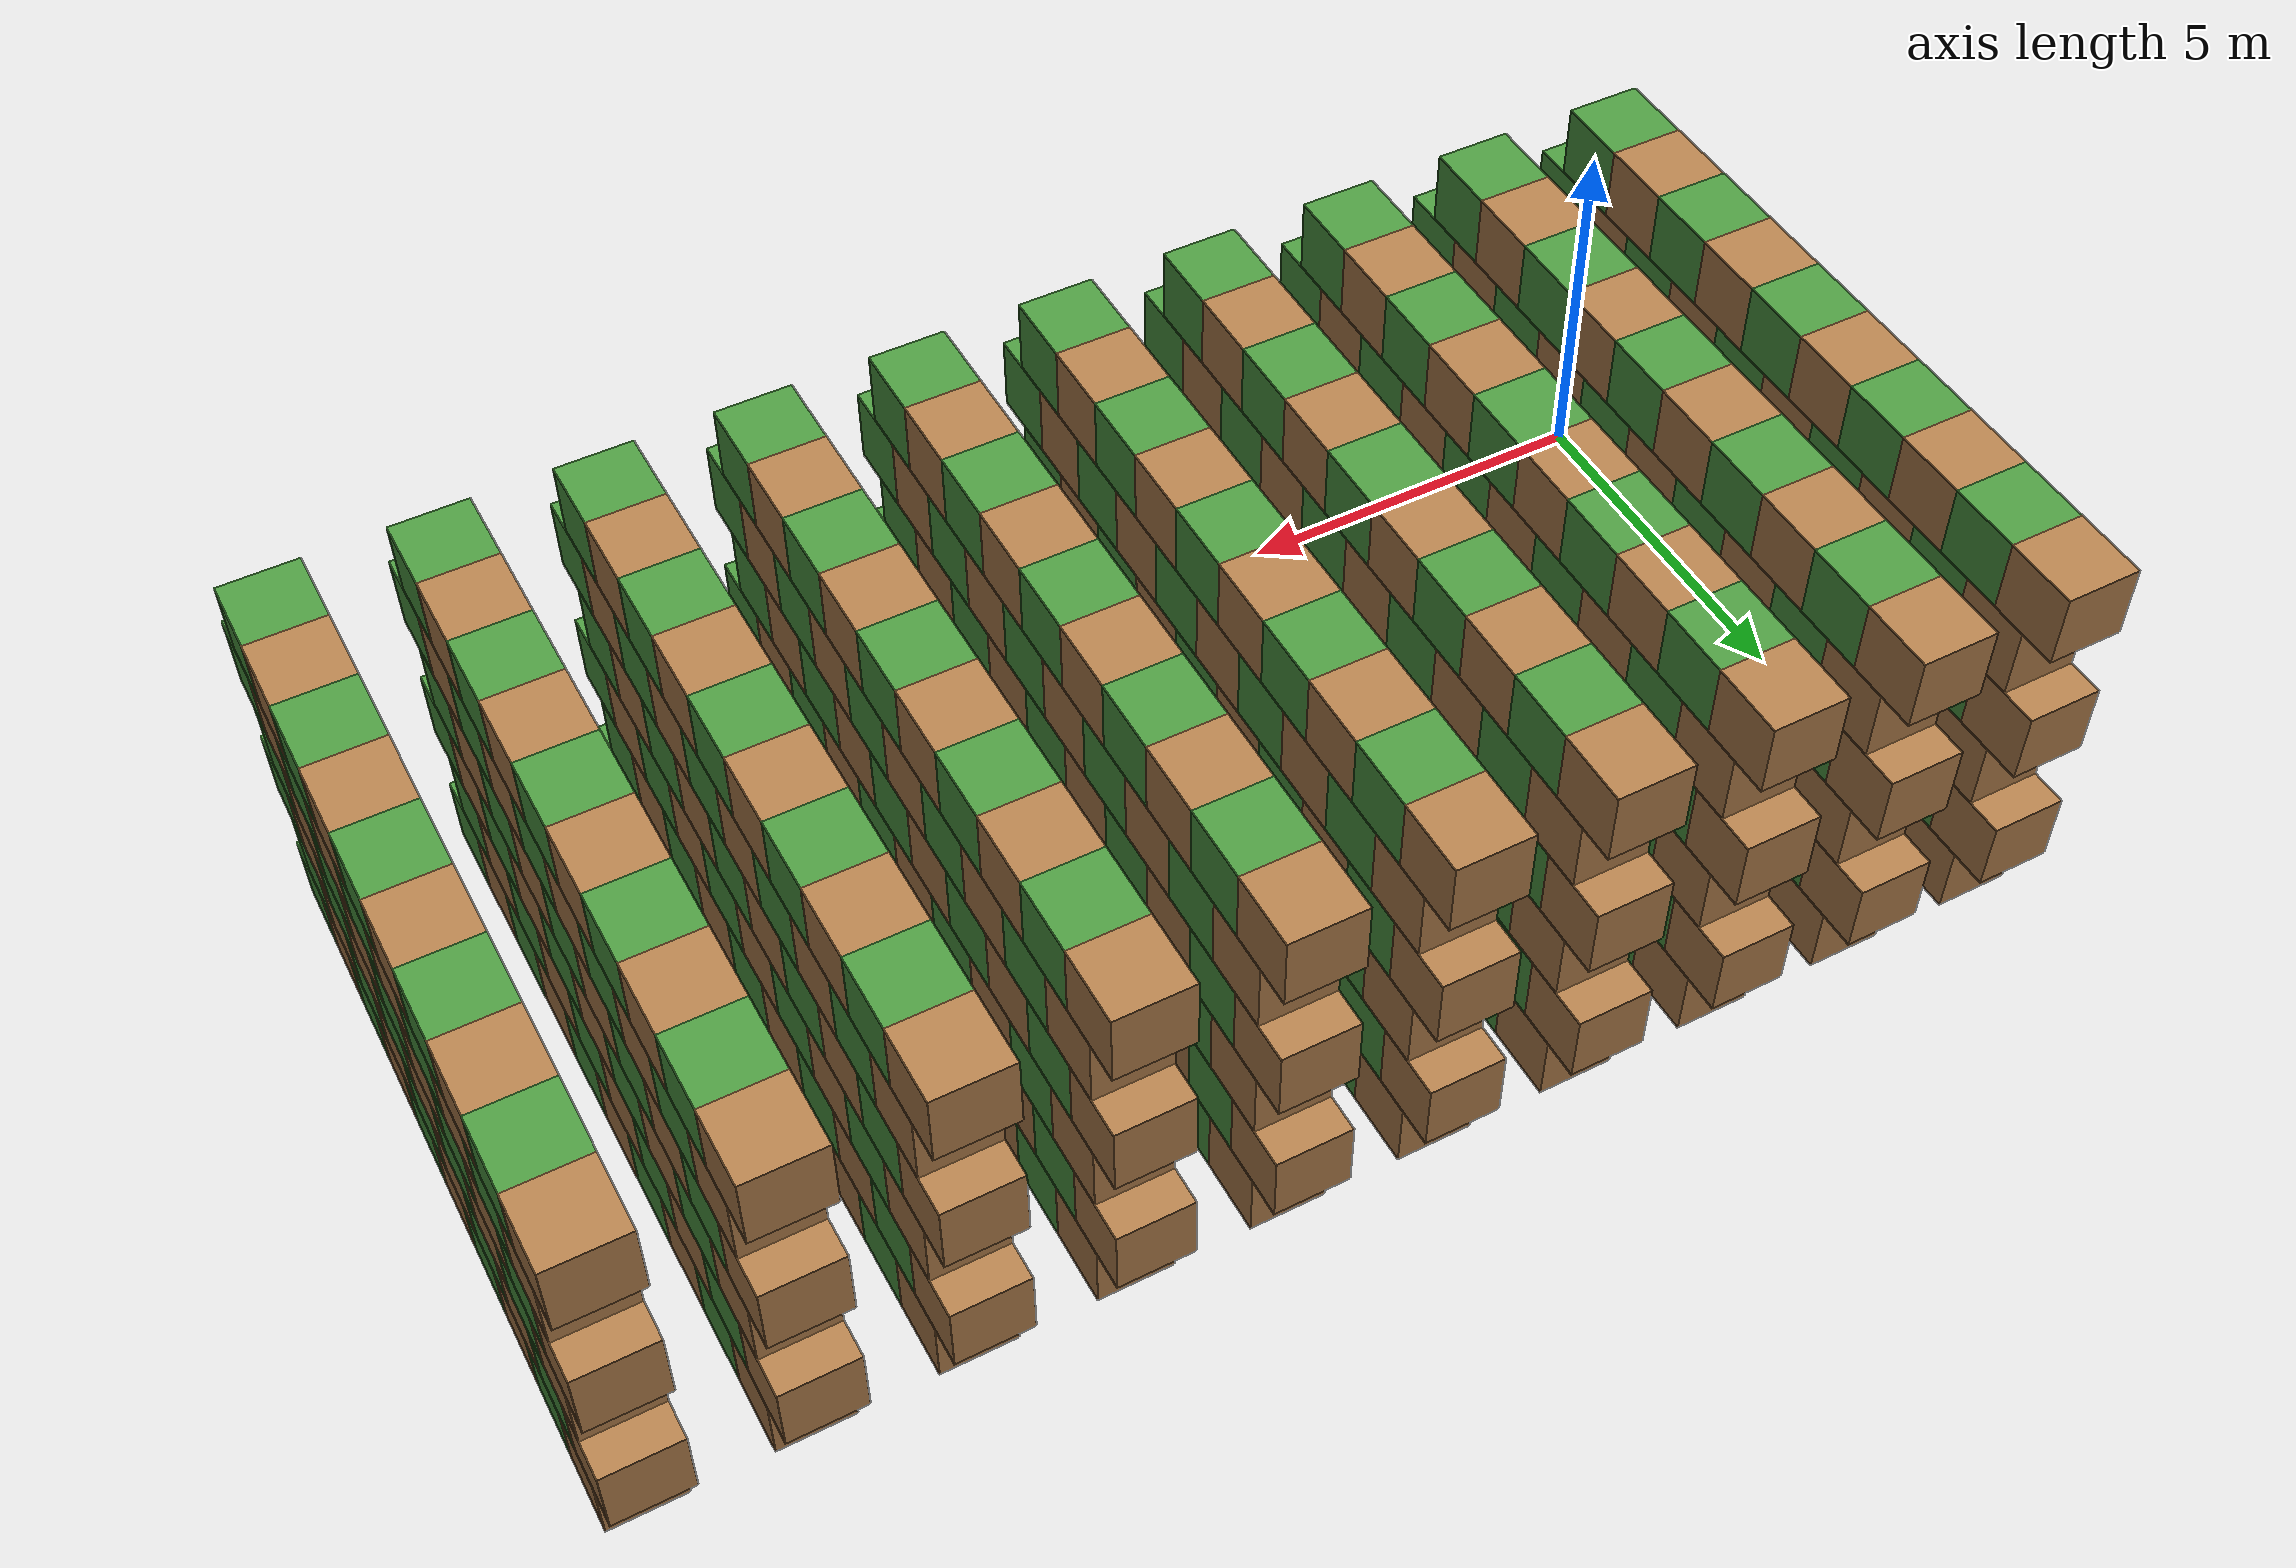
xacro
<?xml version="1.0"?>
<robot name="box_stack_block"
       xmlns:xi="http://www.w3.org/2001/XInclude"
       xmlns:gazebo="http://playerstage.sourceforge.net/gazebo/xmlschema/#gz"
       xmlns:model="http://playerstage.sourceforge.net/gazebo/xmlschema/#model"
       xmlns:sensor="http://playerstage.sourceforge.net/gazebo/xmlschema/#sensor"
       xmlns:body="http://playerstage.sourceforge.net/gazebo/xmlschema/#body"
       xmlns:geom="http://playerstage.sourceforge.net/gazebo/xmlschema/#geom"
       xmlns:joint="http://playerstage.sourceforge.net/gazebo/xmlschema/#joint"
       xmlns:interface="http://playerstage.sourceforge.net/gazebo/xmlschema/#interface"
       xmlns:rendering="http://playerstage.sourceforge.net/gazebo/xmlschema/#rendering"
       xmlns:renderable="http://playerstage.sourceforge.net/gazebo/xmlschema/#renderable"
       xmlns:controller="http://playerstage.sourceforge.net/gazebo/xmlschema/#controller"
       xmlns:xacro="http://ros.org/wiki/xacro"
       xmlns:physics="http://playerstage.sourceforge.net/gazebo/xmlschema/#physics">

  <xacro:property name="moi" value="0.01"/>
  <xacro:property name="mass" value="1.0"/>
  <xacro:property name="kp" value="100000000000.0"/> <!-- erp of ~1e-2 -->
  <xacro:property name="kd" value="1000000000.0"/> <!-- cfm of ~1e-10 -->

  <link name="world"/>
  <xacro:macro name="one_link" params="link_name parent *origin material">
    <joint name="${link_name}_joint" type="floating" >
      <insert_block name="origin"/>
      <parent link="${parent}" />
      <child link="${link_name}" />
      <dynamics damping="0.0" />
    </joint>
    <link name="${link_name}">
      <inertial >
        <mass value="${mass}" />
        <origin xyz="0 0 0" />
        <inertia  ixx="${moi}" ixy="0.0"  ixz="0.0"  iyy="${moi}"  iyz="0.0"  izz="${moi}" />
      </inertial>
      <visual >
        <origin xyz="0 0 0.5" rpy="0 0 0" />
        <geometry>
          <box size="1 1 1" />
        </geometry>
      </visual>
      <collision >
        <origin xyz="0 0 0.5" rpy="0 0 0" />
        <geometry>
          <box size="1 1 1" />
        </geometry>
      </collision>
    </link>
    <gazebo reference="${link_name}">
      <kp>${kp}</kp>
      <kd>${kd}</kd>
      <material>${material}</material>
      <turnGravityOff>false</turnGravityOff>
      <selfCollide>true</selfCollide>
    </gazebo>
  </xacro:macro>

  <xacro:macro name ="interlaced_wall" params="offset">
    <xacro:one_link link_name="${offset}_link00" parent="world" material="Gazebo/GrassFloor"> <origin xyz="${offset} 0 0" rpy="0 0 0"/> </xacro:one_link>
    <xacro:one_link link_name="${offset}_link01" parent="world" material="Gazebo/LightWood">  <origin xyz="${offset} 1 0" rpy="0 0 0"/> </xacro:one_link>
    <xacro:one_link link_name="${offset}_link02" parent="world" material="Gazebo/GrassFloor"> <origin xyz="${offset} 2 0" rpy="0 0 0"/> </xacro:one_link>
    <xacro:one_link link_name="${offset}_link03" parent="world" material="Gazebo/LightWood">  <origin xyz="${offset} 3 0" rpy="0 0 0"/> </xacro:one_link>
    <xacro:one_link link_name="${offset}_link04" parent="world" material="Gazebo/GrassFloor"> <origin xyz="${offset} 4 0" rpy="0 0 0"/> </xacro:one_link>
    <xacro:one_link link_name="${offset}_link05" parent="world" material="Gazebo/LightWood">  <origin xyz="${offset} 5 0" rpy="0 0 0"/> </xacro:one_link>
    <xacro:one_link link_name="${offset}_link06" parent="world" material="Gazebo/GrassFloor"> <origin xyz="${offset} 6 0" rpy="0 0 0"/> </xacro:one_link>
    <xacro:one_link link_name="${offset}_link07" parent="world" material="Gazebo/LightWood">  <origin xyz="${offset} 7 0" rpy="0 0 0"/> </xacro:one_link>
    <xacro:one_link link_name="${offset}_link08" parent="world" material="Gazebo/GrassFloor"> <origin xyz="${offset} 8 0" rpy="0 0 0"/> </xacro:one_link>
    <xacro:one_link link_name="${offset}_link09" parent="world" material="Gazebo/LightWood">  <origin xyz="${offset} 9 0" rpy="0 0 0"/> </xacro:one_link>

    <xacro:one_link link_name="${offset}_link10" parent="world" material="Gazebo/GrassFloor"> <origin xyz="${offset} 0.5 1" rpy="0 0 0"/> </xacro:one_link>
    <xacro:one_link link_name="${offset}_link11" parent="world" material="Gazebo/LightWood">  <origin xyz="${offset} 1.5 1" rpy="0 0 0"/> </xacro:one_link>
    <xacro:one_link link_name="${offset}_link12" parent="world" material="Gazebo/GrassFloor"> <origin xyz="${offset} 2.5 1" rpy="0 0 0"/> </xacro:one_link>
    <xacro:one_link link_name="${offset}_link13" parent="world" material="Gazebo/LightWood">  <origin xyz="${offset} 3.5 1" rpy="0 0 0"/> </xacro:one_link>
    <xacro:one_link link_name="${offset}_link14" parent="world" material="Gazebo/GrassFloor"> <origin xyz="${offset} 4.5 1" rpy="0 0 0"/> </xacro:one_link>
    <xacro:one_link link_name="${offset}_link15" parent="world" material="Gazebo/LightWood">  <origin xyz="${offset} 5.5 1" rpy="0 0 0"/> </xacro:one_link>
    <xacro:one_link link_name="${offset}_link16" parent="world" material="Gazebo/GrassFloor"> <origin xyz="${offset} 6.5 1" rpy="0 0 0"/> </xacro:one_link>
    <xacro:one_link link_name="${offset}_link17" parent="world" material="Gazebo/LightWood">  <origin xyz="${offset} 7.5 1" rpy="0 0 0"/> </xacro:one_link>
    <xacro:one_link link_name="${offset}_link18" parent="world" material="Gazebo/GrassFloor"> <origin xyz="${offset} 8.5 1" rpy="0 0 0"/> </xacro:one_link>
    <xacro:one_link link_name="${offset}_link19" parent="world" material="Gazebo/LightWood">  <origin xyz="${offset} 9.5 1" rpy="0 0 0"/> </xacro:one_link>

    <xacro:one_link link_name="${offset}_link20" parent="world" material="Gazebo/GrassFloor"> <origin xyz="${offset} 0 2" rpy="0 0 0"/> </xacro:one_link>
    <xacro:one_link link_name="${offset}_link21" parent="world" material="Gazebo/LightWood">  <origin xyz="${offset} 1 2" rpy="0 0 0"/> </xacro:one_link>
    <xacro:one_link link_name="${offset}_link22" parent="world" material="Gazebo/GrassFloor"> <origin xyz="${offset} 2 2" rpy="0 0 0"/> </xacro:one_link>
    <xacro:one_link link_name="${offset}_link23" parent="world" material="Gazebo/LightWood">  <origin xyz="${offset} 3 2" rpy="0 0 0"/> </xacro:one_link>
    <xacro:one_link link_name="${offset}_link24" parent="world" material="Gazebo/GrassFloor"> <origin xyz="${offset} 4 2" rpy="0 0 0"/> </xacro:one_link>
    <xacro:one_link link_name="${offset}_link25" parent="world" material="Gazebo/LightWood">  <origin xyz="${offset} 5 2" rpy="0 0 0"/> </xacro:one_link>
    <xacro:one_link link_name="${offset}_link26" parent="world" material="Gazebo/GrassFloor"> <origin xyz="${offset} 6 2" rpy="0 0 0"/> </xacro:one_link>
    <xacro:one_link link_name="${offset}_link27" parent="world" material="Gazebo/LightWood">  <origin xyz="${offset} 7 2" rpy="0 0 0"/> </xacro:one_link>
    <xacro:one_link link_name="${offset}_link28" parent="world" material="Gazebo/GrassFloor"> <origin xyz="${offset} 8 2" rpy="0 0 0"/> </xacro:one_link>
    <xacro:one_link link_name="${offset}_link29" parent="world" material="Gazebo/LightWood">  <origin xyz="${offset} 9 2" rpy="0 0 0"/> </xacro:one_link>

    <xacro:one_link link_name="${offset}_link30" parent="world" material="Gazebo/GrassFloor"> <origin xyz="${offset} 0.5 3" rpy="0 0 0"/> </xacro:one_link>
    <xacro:one_link link_name="${offset}_link31" parent="world" material="Gazebo/LightWood">  <origin xyz="${offset} 1.5 3" rpy="0 0 0"/> </xacro:one_link>
    <xacro:one_link link_name="${offset}_link32" parent="world" material="Gazebo/GrassFloor"> <origin xyz="${offset} 2.5 3" rpy="0 0 0"/> </xacro:one_link>
    <xacro:one_link link_name="${offset}_link33" parent="world" material="Gazebo/LightWood">  <origin xyz="${offset} 3.5 3" rpy="0 0 0"/> </xacro:one_link>
    <xacro:one_link link_name="${offset}_link34" parent="world" material="Gazebo/GrassFloor"> <origin xyz="${offset} 4.5 3" rpy="0 0 0"/> </xacro:one_link>
    <xacro:one_link link_name="${offset}_link35" parent="world" material="Gazebo/LightWood">  <origin xyz="${offset} 5.5 3" rpy="0 0 0"/> </xacro:one_link>
    <xacro:one_link link_name="${offset}_link36" parent="world" material="Gazebo/GrassFloor"> <origin xyz="${offset} 6.5 3" rpy="0 0 0"/> </xacro:one_link>
    <xacro:one_link link_name="${offset}_link37" parent="world" material="Gazebo/LightWood">  <origin xyz="${offset} 7.5 3" rpy="0 0 0"/> </xacro:one_link>
    <xacro:one_link link_name="${offset}_link38" parent="world" material="Gazebo/GrassFloor"> <origin xyz="${offset} 8.5 3" rpy="0 0 0"/> </xacro:one_link>
    <xacro:one_link link_name="${offset}_link39" parent="world" material="Gazebo/LightWood">  <origin xyz="${offset} 9.5 3" rpy="0 0 0"/> </xacro:one_link>

    <xacro:one_link link_name="${offset}_link40" parent="world" material="Gazebo/GrassFloor"> <origin xyz="${offset} 0 4" rpy="0 0 0"/> </xacro:one_link>
    <xacro:one_link link_name="${offset}_link41" parent="world" material="Gazebo/LightWood">  <origin xyz="${offset} 1 4" rpy="0 0 0"/> </xacro:one_link>
    <xacro:one_link link_name="${offset}_link42" parent="world" material="Gazebo/GrassFloor"> <origin xyz="${offset} 2 4" rpy="0 0 0"/> </xacro:one_link>
    <xacro:one_link link_name="${offset}_link43" parent="world" material="Gazebo/LightWood">  <origin xyz="${offset} 3 4" rpy="0 0 0"/> </xacro:one_link>
    <xacro:one_link link_name="${offset}_link44" parent="world" material="Gazebo/GrassFloor"> <origin xyz="${offset} 4 4" rpy="0 0 0"/> </xacro:one_link>
    <xacro:one_link link_name="${offset}_link45" parent="world" material="Gazebo/LightWood">  <origin xyz="${offset} 5 4" rpy="0 0 0"/> </xacro:one_link>
    <xacro:one_link link_name="${offset}_link46" parent="world" material="Gazebo/GrassFloor"> <origin xyz="${offset} 6 4" rpy="0 0 0"/> </xacro:one_link>
    <xacro:one_link link_name="${offset}_link47" parent="world" material="Gazebo/LightWood">  <origin xyz="${offset} 7 4" rpy="0 0 0"/> </xacro:one_link>
    <xacro:one_link link_name="${offset}_link48" parent="world" material="Gazebo/GrassFloor"> <origin xyz="${offset} 8 4" rpy="0 0 0"/> </xacro:one_link>
    <xacro:one_link link_name="${offset}_link49" parent="world" material="Gazebo/LightWood">  <origin xyz="${offset} 9 4" rpy="0 0 0"/> </xacro:one_link>

    <xacro:one_link link_name="${offset}_link50" parent="world" material="Gazebo/GrassFloor"> <origin xyz="${offset} 0.5 5" rpy="0 0 0"/> </xacro:one_link>
    <xacro:one_link link_name="${offset}_link51" parent="world" material="Gazebo/LightWood">  <origin xyz="${offset} 1.5 5" rpy="0 0 0"/> </xacro:one_link>
    <xacro:one_link link_name="${offset}_link52" parent="world" material="Gazebo/GrassFloor"> <origin xyz="${offset} 2.5 5" rpy="0 0 0"/> </xacro:one_link>
    <xacro:one_link link_name="${offset}_link53" parent="world" material="Gazebo/LightWood">  <origin xyz="${offset} 3.5 5" rpy="0 0 0"/> </xacro:one_link>
    <xacro:one_link link_name="${offset}_link54" parent="world" material="Gazebo/GrassFloor"> <origin xyz="${offset} 4.5 5" rpy="0 0 0"/> </xacro:one_link>
    <xacro:one_link link_name="${offset}_link55" parent="world" material="Gazebo/LightWood">  <origin xyz="${offset} 5.5 5" rpy="0 0 0"/> </xacro:one_link>
    <xacro:one_link link_name="${offset}_link56" parent="world" material="Gazebo/GrassFloor"> <origin xyz="${offset} 6.5 5" rpy="0 0 0"/> </xacro:one_link>
    <xacro:one_link link_name="${offset}_link57" parent="world" material="Gazebo/LightWood">  <origin xyz="${offset} 7.5 5" rpy="0 0 0"/> </xacro:one_link>
    <xacro:one_link link_name="${offset}_link58" parent="world" material="Gazebo/GrassFloor"> <origin xyz="${offset} 8.5 5" rpy="0 0 0"/> </xacro:one_link>
    <xacro:one_link link_name="${offset}_link59" parent="world" material="Gazebo/LightWood">  <origin xyz="${offset} 9.5 5" rpy="0 0 0"/> </xacro:one_link>
  </xacro:macro>

  <xacro:interlaced_wall offset="0"  />
  <xacro:interlaced_wall offset="2"  />
  <xacro:interlaced_wall offset="4"  />
  <xacro:interlaced_wall offset="6"  />
  <xacro:interlaced_wall offset="8"  />
  <xacro:interlaced_wall offset="10"  />
  <xacro:interlaced_wall offset="12"  />
  <xacro:interlaced_wall offset="14"  />
  <xacro:interlaced_wall offset="16"  />
  <xacro:interlaced_wall offset="18"  />

</robot>
